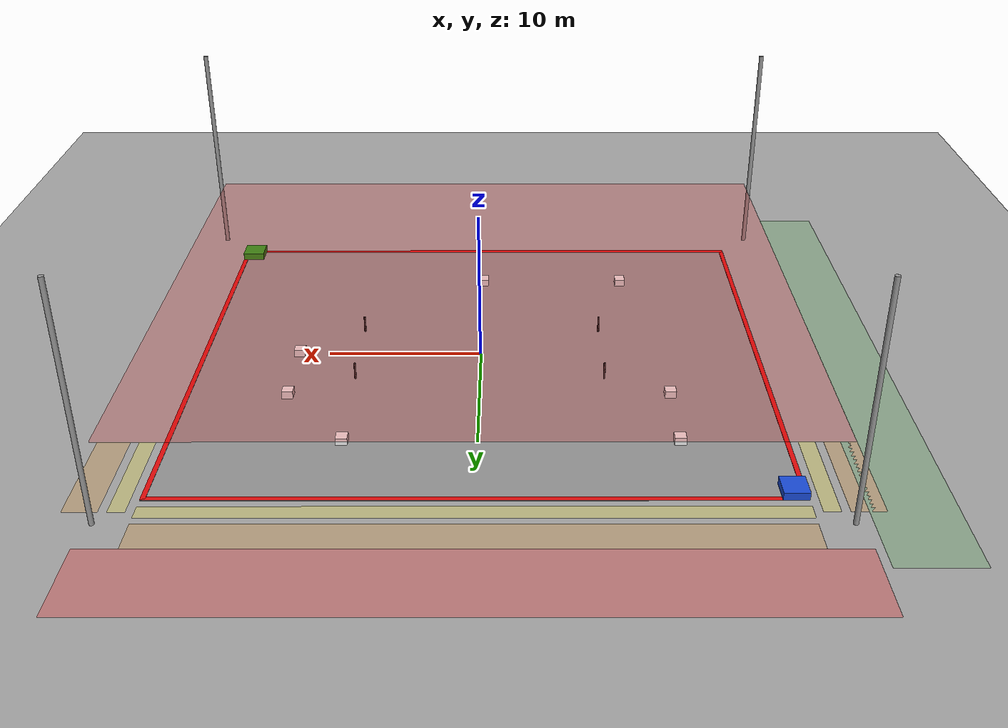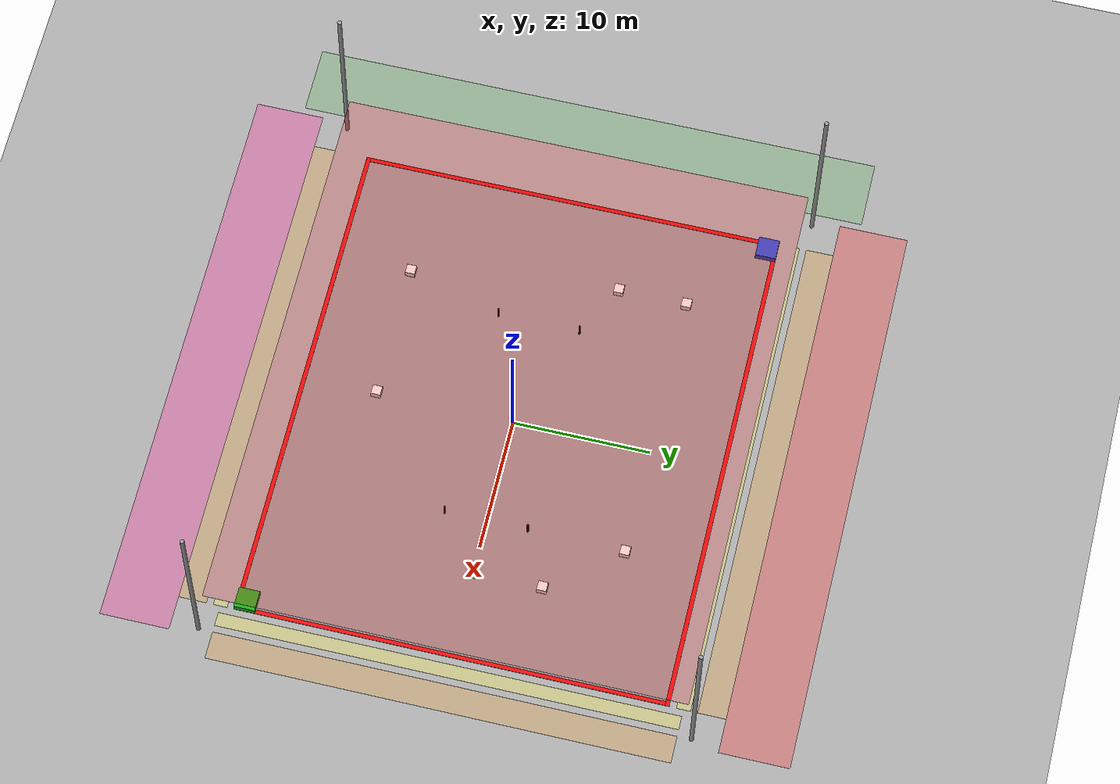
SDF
<sdf version="1.7">
 <world name="robofest_arena">
  <physics type="ode">
   <real_time_update_rate>-1</real_time_update_rate>
   <max_step_size>0.001</max_step_size>
   <ode>
    <solver>
     <type>quick</type>
     <iters>100</iters>
     <sor>1</sor>
     <use_dynamic_moi_rescaling>0</use_dynamic_moi_rescaling>
    </solver>
    <constraints>
     <cfm>0</cfm>
     <erp>0.2</erp>
     <contact_max_correcting_vel>0.1</contact_max_correcting_vel>
     <contact_surface_layer>0</contact_surface_layer>
    </constraints>
   </ode>
   <real_time_factor>1</real_time_factor>
  </physics>
  <gravity>0 0 -9.81</gravity>
  <light name="sun" type="directional">
   <pose>0 0 10 0 -0 0</pose>
   <diffuse>0.8 0.8 0.8 1</diffuse>
   <specular>0.2 0.2 0.2 1</specular>
   <attenuation>
    <range>1000</range>
    <constant>0.9</constant>
    <linear>0.01</linear>
    <quadratic>0.001</quadratic>
   </attenuation>
   <direction>-0.5 0.1 -0.9</direction>
   <spot><inner_angle>0</inner_angle><outer_angle>0</outer_angle><falloff>0</falloff></spot>
  </light>
  <model name="site_ground">
   <static>1</static>
   <link name="link">
    <collision name="col">
     <geometry><plane><normal>0 0 1</normal><size>80 80</size></plane></geometry>
     <surface><friction><ode><mu>1</mu><mu2>1</mu2></ode></friction></surface>
    </collision>
    <visual name="vis">
     <pose>0 0 -0.01 0 -0 0</pose>
     <geometry><plane><normal>0 0 1</normal><size>80 80</size></plane></geometry>
     <material><ambient>0.6 0.6 0.6 1</ambient><diffuse>0.65 0.65 0.65 1</diffuse></material>
    </visual>
   </link>
  </model>
  <model name="arena_floor">
   <static>1</static>
   <link name="link">
    <collision name="floor_col">
     <geometry><box><size>37 31 0.02</size></box></geometry>
     <pose>0 0 -0.01 0 -0 0</pose>
     <surface><friction><ode><mu>1</mu><mu2>1</mu2></ode></friction></surface>
    </collision>
    <visual name="floor_vis">
     <pose>0 0 -0.01 0 -0 0</pose>
     <geometry><box><size>37 31 0.02</size></box></geometry>
     <material><ambient>0.55 0.55 0.55 1</ambient><diffuse>0.58 0.58 0.58 1</diffuse></material>
    </visual>
   </link>
  </model>
  <model name="arena_boundary">
   <static>1</static>
   <link name="link">
    <visual name="top">
     <pose>0 15.35 0.01 0 -0 0</pose>
     <geometry><box><size>37 0.3 0.02</size></box></geometry>
     <material><diffuse>0.9 0.05 0.05 1</diffuse><ambient>0.6 0.02 0.02 1</ambient></material>
    </visual>
    <visual name="bottom">
     <pose>0 -15.35 0.01 0 -0 0</pose>
     <geometry><box><size>37 0.3 0.02</size></box></geometry>
     <material><diffuse>0.9 0.05 0.05 1</diffuse><ambient>0.6 0.02 0.02 1</ambient></material>
    </visual>
    <visual name="left">
     <pose>-18.35 0 0.01 0 -0 0</pose>
     <geometry><box><size>0.3 31 0.02</size></box></geometry>
     <material><diffuse>0.9 0.05 0.05 1</diffuse><ambient>0.6 0.02 0.02 1</ambient></material>
    </visual>
    <visual name="right">
     <pose>18.35 0 0.01 0 -0 0</pose>
     <geometry><box><size>0.3 31 0.02</size></box></geometry>
     <material><diffuse>0.9 0.05 0.05 1</diffuse><ambient>0.6 0.02 0.02 1</ambient></material>
    </visual>
   </link>
  </model>
  <model name="start_zone">
   <static>1</static>
   <pose>17.75 -14.75 0.25 0 -0 0</pose>
   <link name="link">
    <collision name="col"><geometry><box><size>1.5 1.5 0.5</size></box></geometry></collision>
    <visual name="vis">
     <geometry><box><size>1.5 1.5 0.5</size></box></geometry>
     <material><diffuse>0.1 0.65 0.1 1</diffuse><ambient>0.05 0.45 0.05 1</ambient></material>
    </visual>
   </link>
  </model>
  <model name="finish_zone">
   <static>1</static>
   <pose>-17.75 14.75 0.25 0 -0 0</pose>
   <link name="link">
    <collision name="col"><geometry><box><size>1.5 1.5 0.5</size></box></geometry></collision>
    <visual name="vis">
     <geometry><box><size>1.5 1.5 0.5</size></box></geometry>
     <material><diffuse>0.1 0.3 0.85 1</diffuse><ambient>0.06 0.2 0.6 1</ambient></material>
    </visual>
   </link>
  </model>
  <model name="island_A">
   <static>1</static>
   <pose>12 5 0.25 0 -0 0</pose>
   <link name="link">
    <collision name="col"><geometry><box><size>0.7 0.7 0.5</size></box></geometry></collision>
    <visual name="vis">
     <geometry><box><size>0.7 0.7 0.5</size></box></geometry>
     <material><diffuse>0.95 0.95 0.95 1</diffuse><ambient>0.8 0.8 0.8 1</ambient></material>
    </visual>
   </link>
  </model>
  <model name="island_B">
   <static>1</static>
   <pose>-10 -10 0.25 0 -0 0</pose>
   <link name="link">
    <collision name="col"><geometry><box><size>0.7 0.7 0.5</size></box></geometry></collision>
    <visual name="vis">
     <geometry><box><size>0.7 0.7 0.5</size></box></geometry>
     <material><diffuse>0.95 0.95 0.95 1</diffuse><ambient>0.8 0.8 0.8 1</ambient></material>
    </visual>
   </link>
  </model>
  <model name="island_C">
   <static>1</static>
   <pose>12 0 0.25 0 -0 0</pose>
   <link name="link">
    <collision name="col"><geometry><box><size>0.7 0.7 0.5</size></box></geometry></collision>
    <visual name="vis">
     <geometry><box><size>0.7 0.7 0.5</size></box></geometry>
     <material><diffuse>0.95 0.95 0.95 1</diffuse><ambient>0.8 0.8 0.8 1</ambient></material>
    </visual>
   </link>
  </model>
  <model name="island_D">
   <static>1</static>
   <pose>0 -10 0.25 0 -0 0</pose>
   <link name="link">
    <collision name="col"><geometry><box><size>0.7 0.7 0.5</size></box></geometry></collision>
    <visual name="vis">
     <geometry><box><size>0.7 0.7 0.5</size></box></geometry>
     <material><diffuse>0.95 0.95 0.95 1</diffuse><ambient>0.8 0.8 0.8 1</ambient></material>
    </visual>
   </link>
  </model>
  <model name="island_E">
   <static>1</static>
   <pose>-12 5 0.25 0 -0 0</pose>
   <link name="link">
    <collision name="col"><geometry><box><size>0.7 0.7 0.5</size></box></geometry></collision>
    <visual name="vis">
     <geometry><box><size>0.7 0.7 0.5</size></box></geometry>
     <material><diffuse>0.95 0.95 0.95 1</diffuse><ambient>0.8 0.8 0.8 1</ambient></material>
    </visual>
   </link>
  </model>
  <model name="island_F">
   <static>1</static>
   <pose>8 10 0.25 0 -0 0</pose>
   <link name="link">
    <collision name="col"><geometry><box><size>0.7 0.7 0.5</size></box></geometry></collision>
    <visual name="vis">
     <geometry><box><size>0.7 0.7 0.5</size></box></geometry>
     <material><diffuse>0.95 0.95 0.95 1</diffuse><ambient>0.8 0.8 0.8 1</ambient></material>
    </visual>
   </link>
  </model>
  <model name="island_G">
   <static>1</static>
   <pose>-12 10 0.25 0 -0 0</pose>
   <link name="link">
    <collision name="col"><geometry><box><size>0.7 0.7 0.5</size></box></geometry></collision>
    <visual name="vis">
     <geometry><box><size>0.7 0.7 0.5</size></box></geometry>
     <material><diffuse>0.95 0.95 0.95 1</diffuse><ambient>0.8 0.8 0.8 1</ambient></material>
    </visual>
   </link>
  </model>
  <model name="post_1">
   <static>1</static>
   <pose>-8 -3 0.575 0 -0 0</pose>
   <link name="link">
    <collision name="col">
     <geometry><cylinder><radius>0.06</radius><length>1.15</length></cylinder></geometry>
    </collision>
    <visual name="vis">
     <geometry><cylinder><radius>0.06</radius><length>1.15</length></cylinder></geometry>
     <material><diffuse>0.2 0.2 0.2 1</diffuse><ambient>0.15 0.15 0.15 1</ambient></material>
    </visual>
   </link>
  </model>
  <model name="post_2">
   <static>1</static>
   <pose>8 -3 0.575 0 -0 0</pose>
   <link name="link">
    <collision name="col">
     <geometry><cylinder><radius>0.06</radius><length>1.15</length></cylinder></geometry>
    </collision>
    <visual name="vis">
     <geometry><cylinder><radius>0.06</radius><length>1.15</length></cylinder></geometry>
     <material><diffuse>0.2 0.2 0.2 1</diffuse><ambient>0.15 0.15 0.15 1</ambient></material>
    </visual>
   </link>
  </model>
  <model name="post_3">
   <static>1</static>
   <pose>-8 3 0.575 0 -0 0</pose>
   <link name="link">
    <collision name="col">
     <geometry><cylinder><radius>0.06</radius><length>1.15</length></cylinder></geometry>
    </collision>
    <visual name="vis">
     <geometry><cylinder><radius>0.06</radius><length>1.15</length></cylinder></geometry>
     <material><diffuse>0.2 0.2 0.2 1</diffuse><ambient>0.15 0.15 0.15 1</ambient></material>
    </visual>
   </link>
  </model>
  <model name="post_4">
   <static>1</static>
   <pose>8 3 0.575 0 -0 0</pose>
   <link name="link">
    <collision name="col">
     <geometry><cylinder><radius>0.06</radius><length>1.15</length></cylinder></geometry>
    </collision>
    <visual name="vis">
     <geometry><cylinder><radius>0.06</radius><length>1.15</length></cylinder></geometry>
     <material><diffuse>0.2 0.2 0.2 1</diffuse><ambient>0.15 0.15 0.15 1</ambient></material>
    </visual>
   </link>
  </model>
  <model name="ceiling_marker">
   <static>1</static>
   <pose>0 0 5 0 -0 0</pose>
   <link name="link">
    <visual name="grid">
     <geometry><plane><normal>0 0 -1</normal><size>40 34</size></plane></geometry>
     <material><diffuse>0.9 0 0 0.08</diffuse><ambient>0.9 0 0 0.08</ambient></material>
     <transparency>0.92</transparency>
     <cast_shadows>0</cast_shadows>
    </visual>
   </link>
  </model>
  <model name="buffer_zone_1">
   <static>1</static>
   <link name="link">
    <visual name="bz1_top">
     <pose>0 16.5 -0.009 0 -0 0</pose>
     <geometry><box><size>37 1 0.002</size></box></geometry>
     <material><diffuse>0.95 0.9 0.3 0.35</diffuse><ambient>0.8 0.75 0.25 0.35</ambient></material>
    </visual>
    <visual name="bz1_bottom">
     <pose>0 -16.5 -0.009 0 -0 0</pose>
     <geometry><box><size>37 1 0.002</size></box></geometry>
     <material><diffuse>0.95 0.9 0.3 0.35</diffuse><ambient>0.8 0.75 0.25 0.35</ambient></material>
    </visual>
    <visual name="bz1_left">
     <pose>-19.5 0 -0.009 0 -0 0</pose>
     <geometry><box><size>1 33 0.002</size></box></geometry>
     <material><diffuse>0.95 0.9 0.3 0.35</diffuse><ambient>0.8 0.75 0.25 0.35</ambient></material>
    </visual>
    <visual name="bz1_right">
     <pose>19.5 0 -0.009 0 -0 0</pose>
     <geometry><box><size>1 33 0.002</size></box></geometry>
     <material><diffuse>0.95 0.9 0.3 0.35</diffuse><ambient>0.8 0.75 0.25 0.35</ambient></material>
    </visual>
   </link>
  </model>
  <model name="buffer_zone_2">
   <static>1</static>
   <link name="link">
    <visual name="top">
     <pose>0 18.5 -0.009 0 -0 0</pose>
     <geometry><box><size>37 2 0.002</size></box></geometry>
     <material><diffuse>0.9 0.6 0.2 0.3</diffuse><ambient>0.7 0.5 0.2 0.3</ambient></material>
    </visual>
    <visual name="bottom">
     <pose>0 -18.5 -0.009 0 -0 0</pose>
     <geometry><box><size>37 2 0.002</size></box></geometry>
     <material><diffuse>0.9 0.6 0.2 0.3</diffuse><ambient>0.7 0.5 0.2 0.3</ambient></material>
    </visual>
    <visual name="left">
     <pose>-21.5 0 -0.009 0 -0 0</pose>
     <geometry><box><size>2 33 0.002</size></box></geometry>
     <material><diffuse>0.9 0.6 0.2 0.3</diffuse><ambient>0.7 0.5 0.2 0.3</ambient></material>
    </visual>
    <visual name="right">
     <pose>21.5 0 -0.009 0 -0 0</pose>
     <geometry><box><size>2 33 0.002</size></box></geometry>
     <material><diffuse>0.9 0.6 0.2 0.3</diffuse><ambient>0.7 0.5 0.2 0.3</ambient></material>
    </visual>
   </link>
  </model>
  <model name="buffer_zone_3">
   <static>1</static>
   <link name="link">
    <visual name="band">
     <pose>0 22 -0.009 0 -0 0</pose>
     <geometry><box><size>42 5 0.002</size></box></geometry>
     <material><diffuse>0.95 0.2 0.2 0.35</diffuse><ambient>0.8 0.15 0.15 0.35</ambient></material>
    </visual>
   </link>
  </model>
  <model name="buffer_zone_4">
   <static>1</static>
   <link name="link">
    <visual name="band">
     <pose>0 -22 -0.009 0 -0 0</pose>
     <geometry><box><size>42 5 0.002</size></box></geometry>
     <material><diffuse>0.95 0.2 0.6 0.35</diffuse><ambient>0.8 0.15 0.45 0.35</ambient></material>
    </visual>
   </link>
  </model>
  <model name="buffer_zone_5">
   <static>1</static>
   <link name="link">
    <visual name="band">
     <pose>-24 0 -0.009 0 -0 0</pose>
     <geometry><box><size>5 42 0.002</size></box></geometry>
     <material><diffuse>0.4 0.7 0.4 0.35</diffuse><ambient>0.3 0.55 0.3 0.35</ambient></material>
    </visual>
   </link>
  </model>
  <model name="floodlight_NW">
   <static>1</static>
   <pose>-20.5 17.5 7.5 0 -0 0</pose>
   <link name="link">
    <collision name="col">
     <geometry><cylinder><radius>0.15</radius><length>15</length></cylinder></geometry>
    </collision>
    <visual name="vis">
     <geometry><cylinder><radius>0.15</radius><length>15</length></cylinder></geometry>
     <material><diffuse>0.6 0.6 0.6 1</diffuse></material>
    </visual>
   </link>
  </model>
  <model name="floodlight_NE">
   <static>1</static>
   <pose>20.5 17.5 7.5 0 -0 0</pose>
   <link name="link">
    <collision name="col">
     <geometry><cylinder><radius>0.15</radius><length>15</length></cylinder></geometry>
    </collision>
    <visual name="vis">
     <geometry><cylinder><radius>0.15</radius><length>15</length></cylinder></geometry>
     <material><diffuse>0.6 0.6 0.6 1</diffuse></material>
    </visual>
   </link>
  </model>
  <model name="floodlight_SW">
   <static>1</static>
   <pose>-20.5 -17.5 7.5 0 -0 0</pose>
   <link name="link">
    <collision name="col">
     <geometry><cylinder><radius>0.15</radius><length>15</length></cylinder></geometry>
    </collision>
    <visual name="vis">
     <geometry><cylinder><radius>0.15</radius><length>15</length></cylinder></geometry>
     <material><diffuse>0.6 0.6 0.6 1</diffuse></material>
    </visual>
   </link>
  </model>
  <model name="floodlight_SE">
   <static>1</static>
   <pose>20.5 -17.5 7.5 0 -0 0</pose>
   <link name="link">
    <collision name="col">
     <geometry><cylinder><radius>0.15</radius><length>15</length></cylinder></geometry>
    </collision>
    <visual name="vis">
     <geometry><cylinder><radius>0.15</radius><length>15</length></cylinder></geometry>
     <material><diffuse>0.6 0.6 0.6 1</diffuse></material>
    </visual>
   </link>
  </model>
  <magnetic_field>6e-06 2.3e-05 -4.2e-05</magnetic_field>
  <atmosphere type="adiabatic"/>
  <scene><ambient>0.4 0.4 0.4 1</ambient><background>0.7 0.7 0.7 1</background><shadows>1</shadows></scene>
  <spherical_coordinates>
   <surface_model>EARTH_WGS84</surface_model>
   <latitude_deg>0</latitude_deg>
   <longitude_deg>0</longitude_deg>
   <elevation>0</elevation>
   <heading_deg>0</heading_deg>
  </spherical_coordinates>
 </world>
</sdf>
